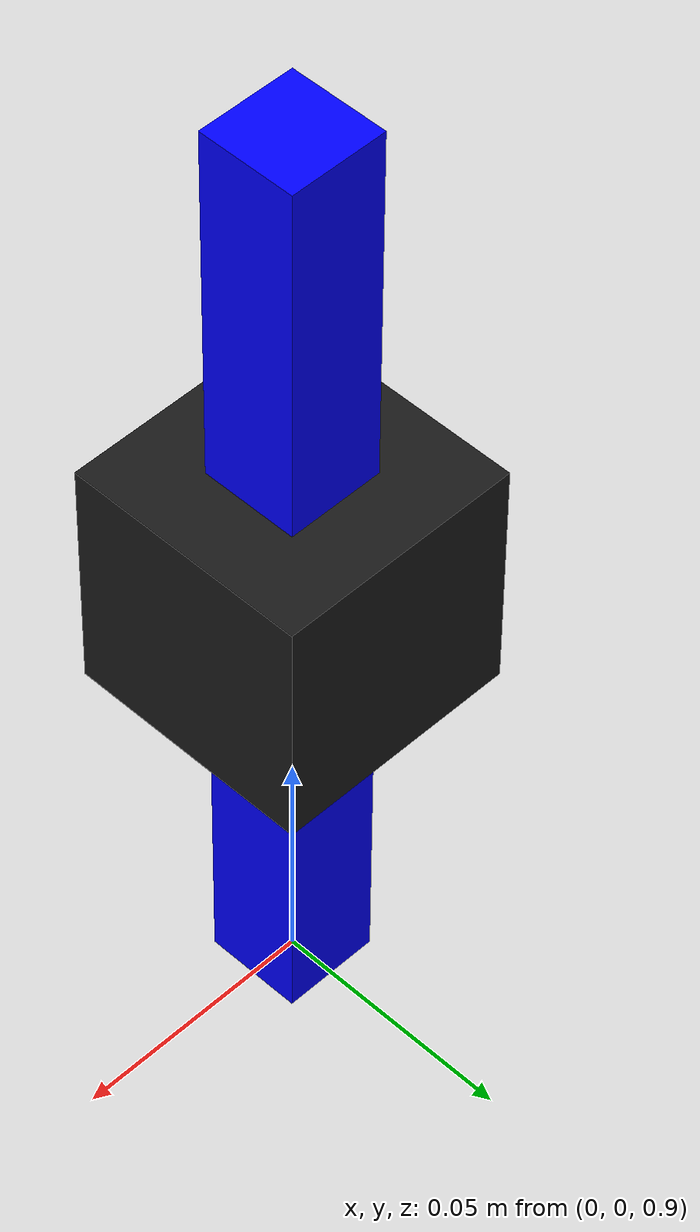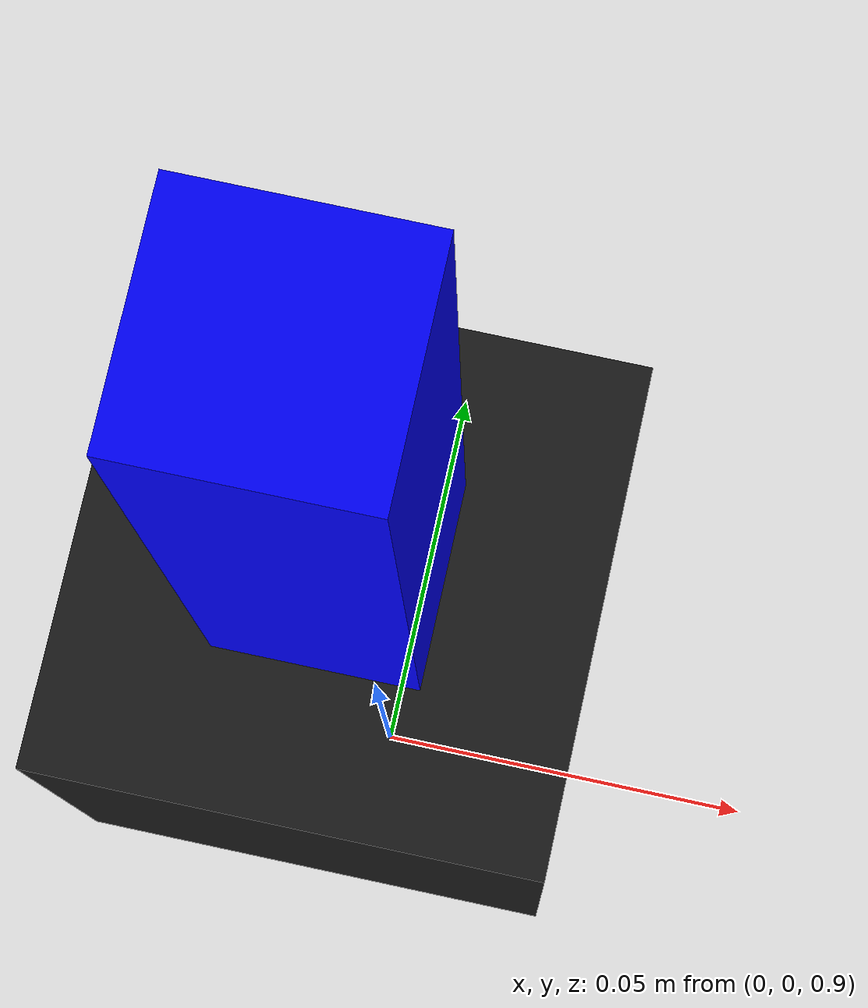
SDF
<?xml version="1.0" ?>
<sdf version="1.6">
  <world name="simple_pendulum_world">
    <physics type="ode">
      <max_step_size>0.001</max_step_size>
      <real_time_factor>1.0</real_time_factor>
      <real_time_update_rate>1000</real_time_update_rate>
      <ode>
        <solver>
          <type>quick</type>
          <iters>50</iters>
          <sor>1.3</sor>
          <friction_model>cone_model</friction_model>
        </solver>
        <constraints>
          <cfm>0</cfm>
          <erp>0.2</erp>
        </constraints>
        <contact>
          <ode>
            <soft_cfm>0</soft_cfm>
            <soft_erp>0.2</soft_erp>
            <kp>1e+08</kp>
            <kd>1</kd>
          </ode>
        </contact>
      </ode>
    </physics>
    <scene>
      <ambient>0.4 0.4 0.4 1</ambient>
      <background>0.7 0.7 0.7 1</background>
      <shadows>true</shadows>
    </scene>
    <include>
      <uri>model://sun</uri>
    </include>

    <model name="base_link">
      <pose>0 0 1 0 0 0</pose>
      <link name="base_link_fixed">
        <inertial>
          <mass>0.1</mass>
          <inertia>
            <ixx>0.0001</ixx> <iyy>0.0001</iyy> <izz>0.0001</izz>
          </inertia>
        </inertial>
        <visual>
          <geometry>
            <box>
              <size>0.05 0.05 0.05</size>
            </box>
          </geometry>
          <material>
            <ambient>0.1 0.1 0.1 1</ambient>
            <diffuse>0.1 0.1 0.1 1</diffuse>
            <specular>0.01 0.01 0.01 1</specular>
            <emissive>0 0 0 0</emissive>
          </material>
        </visual>
        <collision>
          <geometry>
            <box>
              <size>0.05 0.05 0.05</size>
            </box>
          </geometry>
        </collision>
      </link>

      <joint name="pendulum_joint" type="revolute">
        <parent>base_link_fixed</parent>
        <child>pendulum_link</child>
        <pose>0 0 -0.1 0 0 0</pose>
        <axis>
          <xyz>0 1 0</xyz>
        </axis>
      </joint>

      <link name="pendulum_link">
        <inertial>
          <mass>1.0</mass>
          <inertia>
            <ixx>0.083</ixx> <iyy>0.083</iyy> <izz>0.001</izz>
          </inertia>
        </inertial>
        <visual>
          <geometry>
            <box>
              <size>0.02 0.02 0.2</size>
            </box>
          </geometry>
          <material>
            <ambient>0 0 1 1</ambient>
            <diffuse>0 0 1 1</diffuse>
            <specular>0 0 1 1</specular>
            <emissive>0 0 0 0</emissive>
          </material>
        </visual>
        <collision>
          <geometry>
            <box>
              <size>0.02 0.02 0.2</size>
            </box>
          </geometry>
        </collision>
      </link>
    </model>

  </world>
</sdf>
